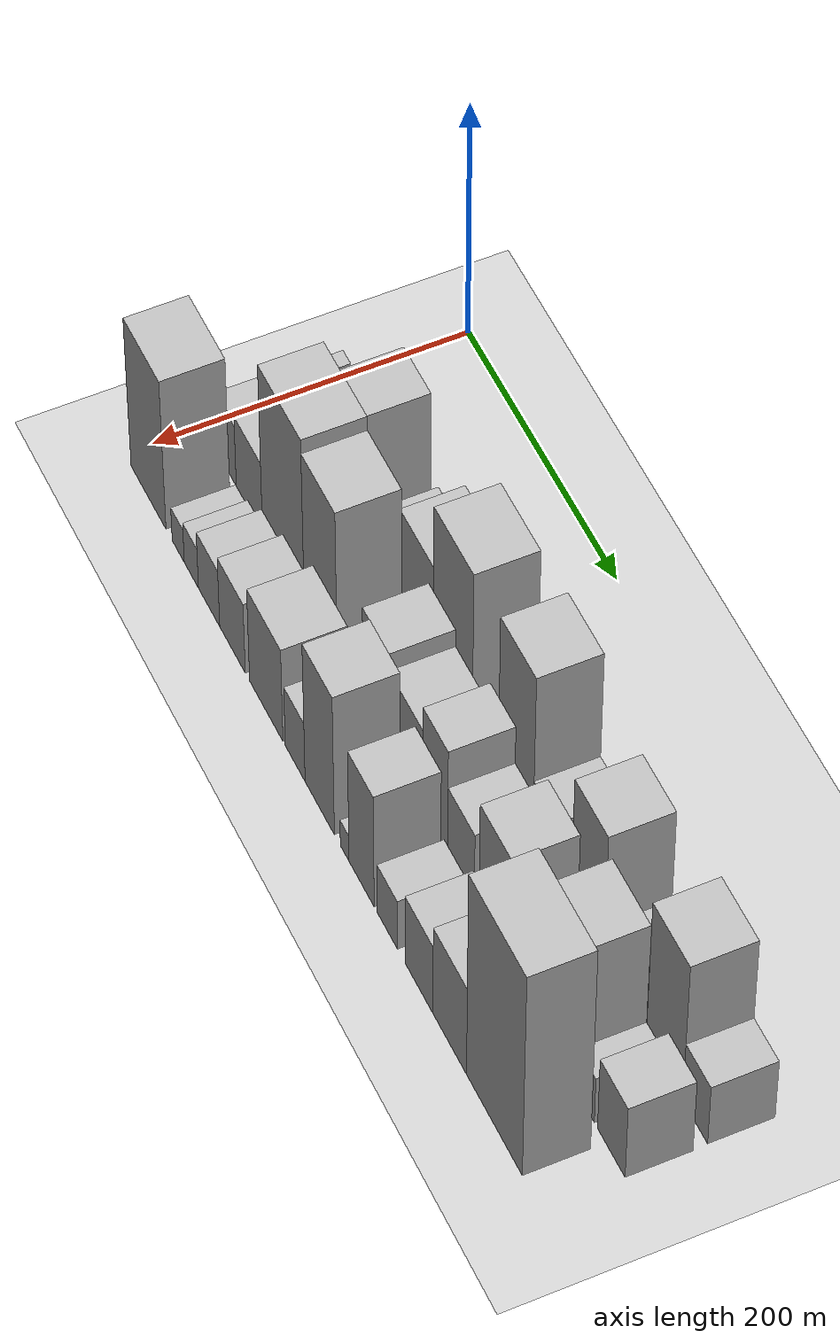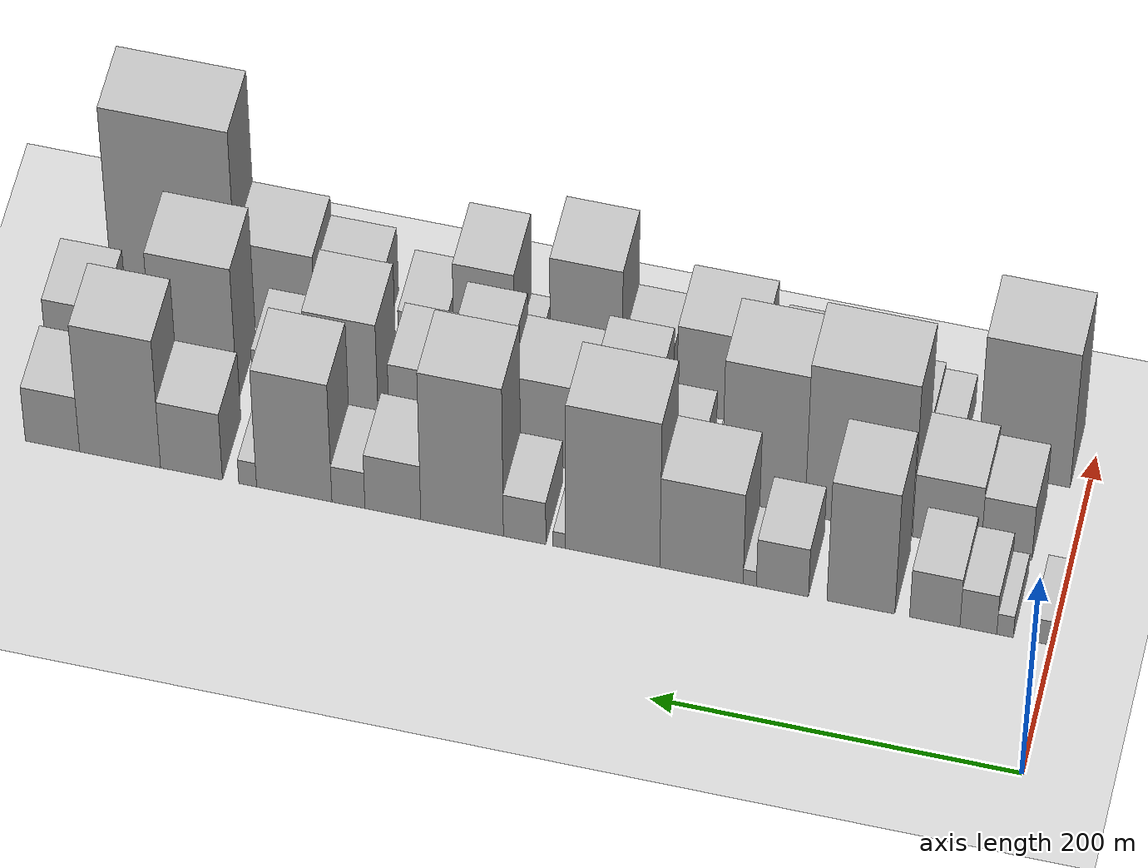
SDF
<sdf version="1.6">
 <world name="default">
  <include>
   <name>ground_plane_2</name>
   <uri>model://HANNAS_ground_plane</uri>
   <pose>100 0 0  0 0 0</pose>
  </include>
  <model name="building_16">
   <static>1</static>
   <pose>100.0000 5.5530 0 0.000000 0.000000 0.000000</pose>
   <link name="link">
    <pose>0 0 12.00 0 0 0</pose>
    <collision name="collision"><geometry><box><size>40.0000 11.0014 24.0000</size></box></geometry></collision>
    <visual name="visual">
     <cast_shadows>0</cast_shadows>
     <geometry><box><size>40.0000 11.0014 24.0000</size></box></geometry>
     <material>
      <script>
       <uri>model://HANNAS_wall/materials/scripts</uri>
       <uri>model://HANNAS_wall/materials/textures</uri>
       <name>vrc/HANNAS_wall</name>
      </script>
     </material>
    </visual>
   </link>
  </model>
  <model name="building_17">
   <static>1</static>
   <pose>100.0000 25.5360 0 0.000000 0.000000 0.000000</pose>
   <link name="link">
    <pose>0 0 10.50 0 0 0</pose>
    <collision name="collision"><geometry><box><size>40.0000 8.9645 21.0000</size></box></geometry></collision>
    <visual name="visual">
     <cast_shadows>0</cast_shadows>
     <geometry><box><size>40.0000 8.9645 21.0000</size></box></geometry>
     <material>
      <script>
       <uri>model://HANNAS_wall/materials/scripts</uri>
       <uri>model://HANNAS_wall/materials/textures</uri>
       <name>vrc/HANNAS_wall</name>
      </script>
     </material>
    </visual>
   </link>
  </model>
  <model name="building_18">
   <static>1</static>
   <pose>100.0000 39.9722 0 0.000000 0.000000 0.000000</pose>
   <link name="link">
    <pose>0 0 19.50 0 0 0</pose>
    <collision name="collision"><geometry><box><size>40.0000 19.9079 39.0000</size></box></geometry></collision>
    <visual name="visual">
     <cast_shadows>0</cast_shadows>
     <geometry><box><size>40.0000 19.9079 39.0000</size></box></geometry>
     <material>
      <script>
       <uri>model://HANNAS_wall/materials/scripts</uri>
       <uri>model://HANNAS_wall/materials/textures</uri>
       <name>vrc/HANNAS_wall</name>
      </script>
     </material>
    </visual>
   </link>
  </model>
  <model name="building_19">
   <static>1</static>
   <pose>100.0000 63.5394 0 0.000000 0.000000 0.000000</pose>
   <link name="link">
    <pose>0 0 24.00 0 0 0</pose>
    <collision name="collision"><geometry><box><size>40.0000 27.2266 48.0000</size></box></geometry></collision>
    <visual name="visual">
     <cast_shadows>0</cast_shadows>
     <geometry><box><size>40.0000 27.2266 48.0000</size></box></geometry>
     <material>
      <script>
       <uri>model://HANNAS_wall/materials/scripts</uri>
       <uri>model://HANNAS_wall/materials/textures</uri>
       <name>vrc/HANNAS_wall</name>
      </script>
     </material>
    </visual>
   </link>
  </model>
  <model name="building_20">
   <static>1</static>
   <pose>100.0000 103.5589 0 0.000000 0.000000 0.000000</pose>
   <link name="link">
    <pose>0 0 60.00 0 0 0</pose>
    <collision name="collision"><geometry><box><size>40.0000 36.8124 120.0000</size></box></geometry></collision>
    <visual name="visual">
     <cast_shadows>0</cast_shadows>
     <geometry><box><size>40.0000 36.8124 120.0000</size></box></geometry>
     <material>
      <script>
       <uri>model://HANNAS_wall/materials/scripts</uri>
       <uri>model://HANNAS_wall/materials/textures</uri>
       <name>vrc/HANNAS_wall</name>
      </script>
     </material>
    </visual>
   </link>
  </model>
  <model name="building_21">
   <static>1</static>
   <pose>100.0000 146.1554 0 0.000000 0.000000 0.000000</pose>
   <link name="link">
    <pose>0 0 24.00 0 0 0</pose>
    <collision name="collision"><geometry><box><size>40.0000 28.3807 48.0000</size></box></geometry></collision>
    <visual name="visual">
     <cast_shadows>0</cast_shadows>
     <geometry><box><size>40.0000 28.3807 48.0000</size></box></geometry>
     <material>
      <script>
       <uri>model://HANNAS_wall/materials/scripts</uri>
       <uri>model://HANNAS_wall/materials/textures</uri>
       <name>vrc/HANNAS_wall</name>
      </script>
     </material>
    </visual>
   </link>
  </model>
  <model name="building_22">
   <static>1</static>
   <pose>100.0000 163.9372 0 0.000000 0.000000 0.000000</pose>
   <link name="link">
    <pose>0 0 7.50 0 0 0</pose>
    <collision name="collision"><geometry><box><size>40.0000 7.1829 15.0000</size></box></geometry></collision>
    <visual name="visual">
     <cast_shadows>0</cast_shadows>
     <geometry><box><size>40.0000 7.1829 15.0000</size></box></geometry>
     <material>
      <script>
       <uri>model://HANNAS_wall/materials/scripts</uri>
       <uri>model://HANNAS_wall/materials/textures</uri>
       <name>vrc/HANNAS_wall</name>
      </script>
     </material>
    </visual>
   </link>
  </model>
  <model name="building_23">
   <static>1</static>
   <pose>100.0000 190.2346 0 0.000000 0.000000 0.000000</pose>
   <link name="link">
    <pose>0 0 45.00 0 0 0</pose>
    <collision name="collision"><geometry><box><size>40.0000 45.4119 90.0000</size></box></geometry></collision>
    <visual name="visual">
     <cast_shadows>0</cast_shadows>
     <geometry><box><size>40.0000 45.4119 90.0000</size></box></geometry>
     <material>
      <script>
       <uri>model://HANNAS_wall/materials/scripts</uri>
       <uri>model://HANNAS_wall/materials/textures</uri>
       <name>vrc/HANNAS_wall</name>
      </script>
     </material>
    </visual>
   </link>
  </model>
  <model name="building_24">
   <static>1</static>
   <pose>100.0000 238.6542 0 0.000000 0.000000 0.000000</pose>
   <link name="link">
    <pose>0 0 72.00 0 0 0</pose>
    <collision name="collision"><geometry><box><size>40.0000 51.4272 144.0000</size></box></geometry></collision>
    <visual name="visual">
     <cast_shadows>0</cast_shadows>
     <geometry><box><size>40.0000 51.4272 144.0000</size></box></geometry>
     <material>
      <script>
       <uri>model://HANNAS_wall/materials/scripts</uri>
       <uri>model://HANNAS_wall/materials/textures</uri>
       <name>vrc/HANNAS_wall</name>
      </script>
     </material>
    </visual>
   </link>
  </model>
  <model name="building_25">
   <static>1</static>
   <pose>100.0000 267.7505 0 0.000000 0.000000 0.000000</pose>
   <link name="link">
    <pose>0 0 7.50 0 0 0</pose>
    <collision name="collision"><geometry><box><size>40.0000 6.7653 15.0000</size></box></geometry></collision>
    <visual name="visual">
     <cast_shadows>0</cast_shadows>
     <geometry><box><size>40.0000 6.7653 15.0000</size></box></geometry>
     <material>
      <script>
       <uri>model://HANNAS_wall/materials/scripts</uri>
       <uri>model://HANNAS_wall/materials/textures</uri>
       <name>vrc/HANNAS_wall</name>
      </script>
     </material>
    </visual>
   </link>
  </model>
  <model name="building_26">
   <static>1</static>
   <pose>100.0000 286.7399 0 0.000000 0.000000 0.000000</pose>
   <link name="link">
    <pose>0 0 21.00 0 0 0</pose>
    <collision name="collision"><geometry><box><size>40.0000 23.2135 42.0000</size></box></geometry></collision>
    <visual name="visual">
     <cast_shadows>0</cast_shadows>
     <geometry><box><size>40.0000 23.2135 42.0000</size></box></geometry>
     <material>
      <script>
       <uri>model://HANNAS_wall/materials/scripts</uri>
       <uri>model://HANNAS_wall/materials/textures</uri>
       <name>vrc/HANNAS_wall</name>
      </script>
     </material>
    </visual>
   </link>
  </model>
  <model name="building_27">
   <static>1</static>
   <pose>100.0000 320.9739 0 0.000000 0.000000 0.000000</pose>
   <link name="link">
    <pose>0 0 73.50 0 0 0</pose>
    <collision name="collision"><geometry><box><size>40.0000 45.2546 147.0000</size></box></geometry></collision>
    <visual name="visual">
     <cast_shadows>0</cast_shadows>
     <geometry><box><size>40.0000 45.2546 147.0000</size></box></geometry>
     <material>
      <script>
       <uri>model://HANNAS_wall/materials/scripts</uri>
       <uri>model://HANNAS_wall/materials/textures</uri>
       <name>vrc/HANNAS_wall</name>
      </script>
     </material>
    </visual>
   </link>
  </model>
  <model name="building_28">
   <static>1</static>
   <pose>100.0000 358.9560 0 0.000000 0.000000 0.000000</pose>
   <link name="link">
    <pose>0 0 27.00 0 0 0</pose>
    <collision name="collision"><geometry><box><size>40.0000 30.7095 54.0000</size></box></geometry></collision>
    <visual name="visual">
     <cast_shadows>0</cast_shadows>
     <geometry><box><size>40.0000 30.7095 54.0000</size></box></geometry>
     <material>
      <script>
       <uri>model://HANNAS_wall/materials/scripts</uri>
       <uri>model://HANNAS_wall/materials/textures</uri>
       <name>vrc/HANNAS_wall</name>
      </script>
     </material>
    </visual>
   </link>
  </model>
  <model name="building_29">
   <static>1</static>
   <pose>100.0000 383.4012 0 0.000000 0.000000 0.000000</pose>
   <link name="link">
    <pose>0 0 18.00 0 0 0</pose>
    <collision name="collision"><geometry><box><size>40.0000 18.1811 36.0000</size></box></geometry></collision>
    <visual name="visual">
     <cast_shadows>0</cast_shadows>
     <geometry><box><size>40.0000 18.1811 36.0000</size></box></geometry>
     <material>
      <script>
       <uri>model://HANNAS_wall/materials/scripts</uri>
       <uri>model://HANNAS_wall/materials/textures</uri>
       <name>vrc/HANNAS_wall</name>
      </script>
     </material>
    </visual>
   </link>
  </model>
  <model name="building_30">
   <static>1</static>
   <pose>100.0000 413.2691 0 0.000000 0.000000 0.000000</pose>
   <link name="link">
    <pose>0 0 58.50 0 0 0</pose>
    <collision name="collision"><geometry><box><size>40.0000 41.5546 117.0000</size></box></geometry></collision>
    <visual name="visual">
     <cast_shadows>0</cast_shadows>
     <geometry><box><size>40.0000 41.5546 117.0000</size></box></geometry>
     <material>
      <script>
       <uri>model://HANNAS_wall/materials/scripts</uri>
       <uri>model://HANNAS_wall/materials/textures</uri>
       <name>vrc/HANNAS_wall</name>
      </script>
     </material>
    </visual>
   </link>
  </model>
  <model name="building_31">
   <static>1</static>
   <pose>100.0000 438.9469 0 0.000000 0.000000 0.000000</pose>
   <link name="link">
    <pose>0 0 12.00 0 0 0</pose>
    <collision name="collision"><geometry><box><size>40.0000 9.8010 24.0000</size></box></geometry></collision>
    <visual name="visual">
     <cast_shadows>0</cast_shadows>
     <geometry><box><size>40.0000 9.8010 24.0000</size></box></geometry>
     <material>
      <script>
       <uri>model://HANNAS_wall/materials/scripts</uri>
       <uri>model://HANNAS_wall/materials/textures</uri>
       <name>vrc/HANNAS_wall</name>
      </script>
     </material>
    </visual>
   </link>
  </model>
  <model name="building_32">
   <static>1</static>
   <pose>100.0000 469.9626 0 0.000000 0.000000 0.000000</pose>
   <link name="link">
    <pose>0 0 33.00 0 0 0</pose>
    <collision name="collision"><geometry><box><size>40.0000 34.2305 66.0000</size></box></geometry></collision>
    <visual name="visual">
     <cast_shadows>0</cast_shadows>
     <geometry><box><size>40.0000 34.2305 66.0000</size></box></geometry>
     <material>
      <script>
       <uri>model://HANNAS_wall/materials/scripts</uri>
       <uri>model://HANNAS_wall/materials/textures</uri>
       <name>vrc/HANNAS_wall</name>
      </script>
     </material>
    </visual>
   </link>
  </model>
  <model name="building_33">
   <static>1</static>
   <pose>100.0000 509.4696 0 0.000000 0.000000 0.000000</pose>
   <link name="link">
    <pose>0 0 63.00 0 0 0</pose>
    <collision name="collision"><geometry><box><size>40.0000 44.7833 126.0000</size></box></geometry></collision>
    <visual name="visual">
     <cast_shadows>0</cast_shadows>
     <geometry><box><size>40.0000 44.7833 126.0000</size></box></geometry>
     <material>
      <script>
       <uri>model://HANNAS_wall/materials/scripts</uri>
       <uri>model://HANNAS_wall/materials/textures</uri>
       <name>vrc/HANNAS_wall</name>
      </script>
     </material>
    </visual>
   </link>
  </model>
  <model name="building_34">
   <static>1</static>
   <pose>100.0000 546.9187 0 0.000000 0.000000 0.000000</pose>
   <link name="link">
    <pose>0 0 27.00 0 0 0</pose>
    <collision name="collision"><geometry><box><size>40.0000 30.1150 54.0000</size></box></geometry></collision>
    <visual name="visual">
     <cast_shadows>0</cast_shadows>
     <geometry><box><size>40.0000 30.1150 54.0000</size></box></geometry>
     <material>
      <script>
       <uri>model://HANNAS_wall/materials/scripts</uri>
       <uri>model://HANNAS_wall/materials/textures</uri>
       <name>vrc/HANNAS_wall</name>
      </script>
     </material>
    </visual>
   </link>
  </model>
  <model name="building_51">
   <static>1</static>
   <pose>149.0000 34.7668 0 0.000000 0.000000 0.000000</pose>
   <link name="link">
    <pose>0 0 27.00 0 0 0</pose>
    <collision name="collision"><geometry><box><size>40.0000 27.5992 54.0000</size></box></geometry></collision>
    <visual name="visual">
     <cast_shadows>0</cast_shadows>
     <geometry><box><size>40.0000 27.5992 54.0000</size></box></geometry>
     <material>
      <script>
       <uri>model://HANNAS_wall/materials/scripts</uri>
       <uri>model://HANNAS_wall/materials/textures</uri>
       <name>vrc/HANNAS_wall</name>
      </script>
     </material>
    </visual>
   </link>
  </model>
  <model name="building_52">
   <static>1</static>
   <pose>149.0000 67.2513 0 0.000000 0.000000 0.000000</pose>
   <link name="link">
    <pose>0 0 31.50 0 0 0</pose>
    <collision name="collision"><geometry><box><size>40.0000 37.3699 63.0000</size></box></geometry></collision>
    <visual name="visual">
     <cast_shadows>0</cast_shadows>
     <geometry><box><size>40.0000 37.3699 63.0000</size></box></geometry>
     <material>
      <script>
       <uri>model://HANNAS_wall/materials/scripts</uri>
       <uri>model://HANNAS_wall/materials/textures</uri>
       <name>vrc/HANNAS_wall</name>
      </script>
     </material>
    </visual>
   </link>
  </model>
  <model name="building_53">
   <static>1</static>
   <pose>149.0000 115.2380 0 0.000000 0.000000 0.000000</pose>
   <link name="link">
    <pose>0 0 75.00 0 0 0</pose>
    <collision name="collision"><geometry><box><size>40.0000 58.6036 150.0000</size></box></geometry></collision>
    <visual name="visual">
     <cast_shadows>0</cast_shadows>
     <geometry><box><size>40.0000 58.6036 150.0000</size></box></geometry>
     <material>
      <script>
       <uri>model://HANNAS_wall/materials/scripts</uri>
       <uri>model://HANNAS_wall/materials/textures</uri>
       <name>vrc/HANNAS_wall</name>
      </script>
     </material>
    </visual>
   </link>
  </model>
  <model name="building_54">
   <static>1</static>
   <pose>149.0000 167.3251 0 0.000000 0.000000 0.000000</pose>
   <link name="link">
    <pose>0 0 69.00 0 0 0</pose>
    <collision name="collision"><geometry><box><size>40.0000 45.5707 138.0000</size></box></geometry></collision>
    <visual name="visual">
     <cast_shadows>0</cast_shadows>
     <geometry><box><size>40.0000 45.5707 138.0000</size></box></geometry>
     <material>
      <script>
       <uri>model://HANNAS_wall/materials/scripts</uri>
       <uri>model://HANNAS_wall/materials/textures</uri>
       <name>vrc/HANNAS_wall</name>
      </script>
     </material>
    </visual>
   </link>
  </model>
  <model name="building_55">
   <static>1</static>
   <pose>149.0000 193.9636 0 0.000000 0.000000 0.000000</pose>
   <link name="link">
    <pose>0 0 9.00 0 0 0</pose>
    <collision name="collision"><geometry><box><size>40.0000 7.7062 18.0000</size></box></geometry></collision>
    <visual name="visual">
     <cast_shadows>0</cast_shadows>
     <geometry><box><size>40.0000 7.7062 18.0000</size></box></geometry>
     <material>
      <script>
       <uri>model://HANNAS_wall/materials/scripts</uri>
       <uri>model://HANNAS_wall/materials/textures</uri>
       <name>vrc/HANNAS_wall</name>
      </script>
     </material>
    </visual>
   </link>
  </model>
  <model name="building_56">
   <static>1</static>
   <pose>149.0000 213.7841 0 0.000000 0.000000 0.000000</pose>
   <link name="link">
    <pose>0 0 21.00 0 0 0</pose>
    <collision name="collision"><geometry><box><size>40.0000 23.9349 42.0000</size></box></geometry></collision>
    <visual name="visual">
     <cast_shadows>0</cast_shadows>
     <geometry><box><size>40.0000 23.9349 42.0000</size></box></geometry>
     <material>
      <script>
       <uri>model://HANNAS_wall/materials/scripts</uri>
       <uri>model://HANNAS_wall/materials/textures</uri>
       <name>vrc/HANNAS_wall</name>
      </script>
     </material>
    </visual>
   </link>
  </model>
  <model name="building_57">
   <static>1</static>
   <pose>149.0000 243.3430 0 0.000000 0.000000 0.000000</pose>
   <link name="link">
    <pose>0 0 48.00 0 0 0</pose>
    <collision name="collision"><geometry><box><size>40.0000 35.1829 96.0000</size></box></geometry></collision>
    <visual name="visual">
     <cast_shadows>0</cast_shadows>
     <geometry><box><size>40.0000 35.1829 96.0000</size></box></geometry>
     <material>
      <script>
       <uri>model://HANNAS_wall/materials/scripts</uri>
       <uri>model://HANNAS_wall/materials/textures</uri>
       <name>vrc/HANNAS_wall</name>
      </script>
     </material>
    </visual>
   </link>
  </model>
  <model name="building_58">
   <static>1</static>
   <pose>149.0000 283.2362 0 0.000000 0.000000 0.000000</pose>
   <link name="link">
    <pose>0 0 40.50 0 0 0</pose>
    <collision name="collision"><geometry><box><size>40.0000 44.6034 81.0000</size></box></geometry></collision>
    <visual name="visual">
     <cast_shadows>0</cast_shadows>
     <geometry><box><size>40.0000 44.6034 81.0000</size></box></geometry>
     <material>
      <script>
       <uri>model://HANNAS_wall/materials/scripts</uri>
       <uri>model://HANNAS_wall/materials/textures</uri>
       <name>vrc/HANNAS_wall</name>
      </script>
     </material>
    </visual>
   </link>
  </model>
  <model name="building_59">
   <static>1</static>
   <pose>149.0000 321.8739 0 0.000000 0.000000 0.000000</pose>
   <link name="link">
    <pose>0 0 51.00 0 0 0</pose>
    <collision name="collision"><geometry><box><size>40.0000 32.6721 102.0000</size></box></geometry></collision>
    <visual name="visual">
     <cast_shadows>0</cast_shadows>
     <geometry><box><size>40.0000 32.6721 102.0000</size></box></geometry>
     <material>
      <script>
       <uri>model://HANNAS_wall/materials/scripts</uri>
       <uri>model://HANNAS_wall/materials/textures</uri>
       <name>vrc/HANNAS_wall</name>
      </script>
     </material>
    </visual>
   </link>
  </model>
  <model name="building_60">
   <static>1</static>
   <pose>149.0000 355.4866 0 0.000000 0.000000 0.000000</pose>
   <link name="link">
    <pose>0 0 34.50 0 0 0</pose>
    <collision name="collision"><geometry><box><size>40.0000 34.5533 69.0000</size></box></geometry></collision>
    <visual name="visual">
     <cast_shadows>0</cast_shadows>
     <geometry><box><size>40.0000 34.5533 69.0000</size></box></geometry>
     <material>
      <script>
       <uri>model://HANNAS_wall/materials/scripts</uri>
       <uri>model://HANNAS_wall/materials/textures</uri>
       <name>vrc/HANNAS_wall</name>
      </script>
     </material>
    </visual>
   </link>
  </model>
  <model name="building_61">
   <static>1</static>
   <pose>149.0000 398.7767 0 0.000000 0.000000 0.000000</pose>
   <link name="link">
    <pose>0 0 52.50 0 0 0</pose>
    <collision name="collision"><geometry><box><size>40.0000 40.0269 105.0000</size></box></geometry></collision>
    <visual name="visual">
     <cast_shadows>0</cast_shadows>
     <geometry><box><size>40.0000 40.0269 105.0000</size></box></geometry>
     <material>
      <script>
       <uri>model://HANNAS_wall/materials/scripts</uri>
       <uri>model://HANNAS_wall/materials/textures</uri>
       <name>vrc/HANNAS_wall</name>
      </script>
     </material>
    </visual>
   </link>
  </model>
  <model name="building_62">
   <static>1</static>
   <pose>149.0000 433.3316 0 0.000000 0.000000 0.000000</pose>
   <link name="link">
    <pose>0 0 28.50 0 0 0</pose>
    <collision name="collision"><geometry><box><size>40.0000 29.0828 57.0000</size></box></geometry></collision>
    <visual name="visual">
     <cast_shadows>0</cast_shadows>
     <geometry><box><size>40.0000 29.0828 57.0000</size></box></geometry>
     <material>
      <script>
       <uri>model://HANNAS_wall/materials/scripts</uri>
       <uri>model://HANNAS_wall/materials/textures</uri>
       <name>vrc/HANNAS_wall</name>
      </script>
     </material>
    </visual>
   </link>
  </model>
  <model name="building_63">
   <static>1</static>
   <pose>149.0000 480.1877 0 0.000000 0.000000 0.000000</pose>
   <link name="link">
    <pose>0 0 66.00 0 0 0</pose>
    <collision name="collision"><geometry><box><size>40.0000 46.6295 132.0000</size></box></geometry></collision>
    <visual name="visual">
     <cast_shadows>0</cast_shadows>
     <geometry><box><size>40.0000 46.6295 132.0000</size></box></geometry>
     <material>
      <script>
       <uri>model://HANNAS_wall/materials/scripts</uri>
       <uri>model://HANNAS_wall/materials/textures</uri>
       <name>vrc/HANNAS_wall</name>
      </script>
     </material>
    </visual>
   </link>
  </model>
  <model name="building_64">
   <static>1</static>
   <pose>149.0000 514.1861 0 0.000000 0.000000 0.000000</pose>
   <link name="link">
    <pose>0 0 21.00 0 0 0</pose>
    <collision name="collision"><geometry><box><size>40.0000 21.3673 42.0000</size></box></geometry></collision>
    <visual name="visual">
     <cast_shadows>0</cast_shadows>
     <geometry><box><size>40.0000 21.3673 42.0000</size></box></geometry>
     <material>
      <script>
       <uri>model://HANNAS_wall/materials/scripts</uri>
       <uri>model://HANNAS_wall/materials/textures</uri>
       <name>vrc/HANNAS_wall</name>
      </script>
     </material>
    </visual>
   </link>
  </model>
  <model name="building_65">
   <static>1</static>
   <pose>149.0000 545.8099 0 0.000000 0.000000 0.000000</pose>
   <link name="link">
    <pose>0 0 33.00 0 0 0</pose>
    <collision name="collision"><geometry><box><size>40.0000 33.8802 66.0000</size></box></geometry></collision>
    <visual name="visual">
     <cast_shadows>0</cast_shadows>
     <geometry><box><size>40.0000 33.8802 66.0000</size></box></geometry>
     <material>
      <script>
       <uri>model://HANNAS_wall/materials/scripts</uri>
       <uri>model://HANNAS_wall/materials/textures</uri>
       <name>vrc/HANNAS_wall</name>
      </script>
     </material>
    </visual>
   </link>
  </model>
  <model name="building_83">
   <static>1</static>
   <pose>198.0000 35.3207 0 0.000000 0.000000 0.000000</pose>
   <link name="link">
    <pose>0 0 66.00 0 0 0</pose>
    <collision name="collision"><geometry><box><size>40.0000 50.7863 132.0000</size></box></geometry></collision>
    <visual name="visual">
     <cast_shadows>0</cast_shadows>
     <geometry><box><size>40.0000 50.7863 132.0000</size></box></geometry>
     <material>
      <script>
       <uri>model://HANNAS_wall/materials/scripts</uri>
       <uri>model://HANNAS_wall/materials/textures</uri>
       <name>vrc/HANNAS_wall</name>
      </script>
     </material>
    </visual>
   </link>
  </model>
  <model name="building_84">
   <static>1</static>
   <pose>198.0000 78.4062 0 0.000000 0.000000 0.000000</pose>
   <link name="link">
    <pose>0 0 15.00 0 0 0</pose>
    <collision name="collision"><geometry><box><size>40.0000 17.3847 30.0000</size></box></geometry></collision>
    <visual name="visual">
     <cast_shadows>0</cast_shadows>
     <geometry><box><size>40.0000 17.3847 30.0000</size></box></geometry>
     <material>
      <script>
       <uri>model://HANNAS_wall/materials/scripts</uri>
       <uri>model://HANNAS_wall/materials/textures</uri>
       <name>vrc/HANNAS_wall</name>
      </script>
     </material>
    </visual>
   </link>
  </model>
  <model name="building_85">
   <static>1</static>
   <pose>198.0000 97.2508 0 0.000000 0.000000 0.000000</pose>
   <link name="link">
    <pose>0 0 18.00 0 0 0</pose>
    <collision name="collision"><geometry><box><size>40.0000 20.3046 36.0000</size></box></geometry></collision>
    <visual name="visual">
     <cast_shadows>0</cast_shadows>
     <geometry><box><size>40.0000 20.3046 36.0000</size></box></geometry>
     <material>
      <script>
       <uri>model://HANNAS_wall/materials/scripts</uri>
       <uri>model://HANNAS_wall/materials/textures</uri>
       <name>vrc/HANNAS_wall</name>
      </script>
     </material>
    </visual>
   </link>
  </model>
  <model name="building_86">
   <static>1</static>
   <pose>198.0000 122.4750 0 0.000000 0.000000 0.000000</pose>
   <link name="link">
    <pose>0 0 25.50 0 0 0</pose>
    <collision name="collision"><geometry><box><size>40.0000 30.1437 51.0000</size></box></geometry></collision>
    <visual name="visual">
     <cast_shadows>0</cast_shadows>
     <geometry><box><size>40.0000 30.1437 51.0000</size></box></geometry>
     <material>
      <script>
       <uri>model://HANNAS_wall/materials/scripts</uri>
       <uri>model://HANNAS_wall/materials/textures</uri>
       <name>vrc/HANNAS_wall</name>
      </script>
     </material>
    </visual>
   </link>
  </model>
  <model name="building_87">
   <static>1</static>
   <pose>198.0000 155.5126 0 0.000000 0.000000 0.000000</pose>
   <link name="link">
    <pose>0 0 31.50 0 0 0</pose>
    <collision name="collision"><geometry><box><size>40.0000 35.9316 63.0000</size></box></geometry></collision>
    <visual name="visual">
     <cast_shadows>0</cast_shadows>
     <geometry><box><size>40.0000 35.9316 63.0000</size></box></geometry>
     <material>
      <script>
       <uri>model://HANNAS_wall/materials/scripts</uri>
       <uri>model://HANNAS_wall/materials/textures</uri>
       <name>vrc/HANNAS_wall</name>
      </script>
     </material>
    </visual>
   </link>
  </model>
  <model name="building_88">
   <static>1</static>
   <pose>198.0000 202.6078 0 0.000000 0.000000 0.000000</pose>
   <link name="link">
    <pose>0 0 42.00 0 0 0</pose>
    <collision name="collision"><geometry><box><size>40.0000 46.2587 84.0000</size></box></geometry></collision>
    <visual name="visual">
     <cast_shadows>0</cast_shadows>
     <geometry><box><size>40.0000 46.2587 84.0000</size></box></geometry>
     <material>
      <script>
       <uri>model://HANNAS_wall/materials/scripts</uri>
       <uri>model://HANNAS_wall/materials/textures</uri>
       <name>vrc/HANNAS_wall</name>
      </script>
     </material>
    </visual>
   </link>
  </model>
  <model name="building_89">
   <static>1</static>
   <pose>198.0000 242.3399 0 0.000000 0.000000 0.000000</pose>
   <link name="link">
    <pose>0 0 27.00 0 0 0</pose>
    <collision name="collision"><geometry><box><size>40.0000 27.2055 54.0000</size></box></geometry></collision>
    <visual name="visual">
     <cast_shadows>0</cast_shadows>
     <geometry><box><size>40.0000 27.2055 54.0000</size></box></geometry>
     <material>
      <script>
       <uri>model://HANNAS_wall/materials/scripts</uri>
       <uri>model://HANNAS_wall/materials/textures</uri>
       <name>vrc/HANNAS_wall</name>
      </script>
     </material>
    </visual>
   </link>
  </model>
  <model name="building_90">
   <static>1</static>
   <pose>198.0000 275.7814 0 0.000000 0.000000 0.000000</pose>
   <link name="link">
    <pose>0 0 63.00 0 0 0</pose>
    <collision name="collision"><geometry><box><size>40.0000 39.6777 126.0000</size></box></geometry></collision>
    <visual name="visual">
     <cast_shadows>0</cast_shadows>
     <geometry><box><size>40.0000 39.6777 126.0000</size></box></geometry>
     <material>
      <script>
       <uri>model://HANNAS_wall/materials/scripts</uri>
       <uri>model://HANNAS_wall/materials/textures</uri>
       <name>vrc/HANNAS_wall</name>
      </script>
     </material>
    </visual>
   </link>
  </model>
  <model name="building_91">
   <static>1</static>
   <pose>198.0000 309.4685 0 0.000000 0.000000 0.000000</pose>
   <link name="link">
    <pose>0 0 12.00 0 0 0</pose>
    <collision name="collision"><geometry><box><size>40.0000 11.6965 24.0000</size></box></geometry></collision>
    <visual name="visual">
     <cast_shadows>0</cast_shadows>
     <geometry><box><size>40.0000 11.6965 24.0000</size></box></geometry>
     <material>
      <script>
       <uri>model://HANNAS_wall/materials/scripts</uri>
       <uri>model://HANNAS_wall/materials/textures</uri>
       <name>vrc/HANNAS_wall</name>
      </script>
     </material>
    </visual>
   </link>
  </model>
  <model name="building_92">
   <static>1</static>
   <pose>198.0000 332.0108 0 0.000000 0.000000 0.000000</pose>
   <link name="link">
    <pose>0 0 51.00 0 0 0</pose>
    <collision name="collision"><geometry><box><size>40.0000 33.3882 102.0000</size></box></geometry></collision>
    <visual name="visual">
     <cast_shadows>0</cast_shadows>
     <geometry><box><size>40.0000 33.3882 102.0000</size></box></geometry>
     <material>
      <script>
       <uri>model://HANNAS_wall/materials/scripts</uri>
       <uri>model://HANNAS_wall/materials/textures</uri>
       <name>vrc/HANNAS_wall</name>
      </script>
     </material>
    </visual>
   </link>
  </model>
  <model name="building_93">
   <static>1</static>
   <pose>198.0000 366.0904 0 0.000000 0.000000 0.000000</pose>
   <link name="link">
    <pose>0 0 22.50 0 0 0</pose>
    <collision name="collision"><geometry><box><size>40.0000 26.7709 45.0000</size></box></geometry></collision>
    <visual name="visual">
     <cast_shadows>0</cast_shadows>
     <geometry><box><size>40.0000 26.7709 45.0000</size></box></geometry>
     <material>
      <script>
       <uri>model://HANNAS_wall/materials/scripts</uri>
       <uri>model://HANNAS_wall/materials/textures</uri>
       <name>vrc/HANNAS_wall</name>
      </script>
     </material>
    </visual>
   </link>
  </model>
  <model name="building_94">
   <static>1</static>
   <pose>198.0000 407.6233 0 0.000000 0.000000 0.000000</pose>
   <link name="link">
    <pose>0 0 31.50 0 0 0</pose>
    <collision name="collision"><geometry><box><size>40.0000 36.2949 63.0000</size></box></geometry></collision>
    <visual name="visual">
     <cast_shadows>0</cast_shadows>
     <geometry><box><size>40.0000 36.2949 63.0000</size></box></geometry>
     <material>
      <script>
       <uri>model://HANNAS_wall/materials/scripts</uri>
       <uri>model://HANNAS_wall/materials/textures</uri>
       <name>vrc/HANNAS_wall</name>
      </script>
     </material>
    </visual>
   </link>
  </model>
  <model name="building_95">
   <static>1</static>
   <pose>198.0000 447.2494 0 0.000000 0.000000 0.000000</pose>
   <link name="link">
    <pose>0 0 40.50 0 0 0</pose>
    <collision name="collision"><geometry><box><size>40.0000 42.9573 81.0000</size></box></geometry></collision>
    <visual name="visual">
     <cast_shadows>0</cast_shadows>
     <geometry><box><size>40.0000 42.9573 81.0000</size></box></geometry>
     <material>
      <script>
       <uri>model://HANNAS_wall/materials/scripts</uri>
       <uri>model://HANNAS_wall/materials/textures</uri>
       <name>vrc/HANNAS_wall</name>
      </script>
     </material>
    </visual>
   </link>
  </model>
  <model name="building_96">
   <static>1</static>
   <pose>198.0000 503.9188 0 0.000000 0.000000 0.000000</pose>
   <link name="link">
    <pose>0 0 93.00 0 0 0</pose>
    <collision name="collision"><geometry><box><size>40.0000 70.3814 186.0000</size></box></geometry></collision>
    <visual name="visual">
     <cast_shadows>0</cast_shadows>
     <geometry><box><size>40.0000 70.3814 186.0000</size></box></geometry>
     <material>
      <script>
       <uri>model://HANNAS_wall/materials/scripts</uri>
       <uri>model://HANNAS_wall/materials/textures</uri>
       <name>vrc/HANNAS_wall</name>
      </script>
     </material>
    </visual>
   </link>
  </model>
 </world>
</sdf>
